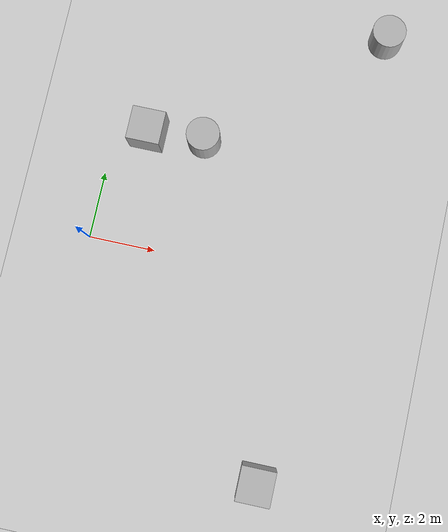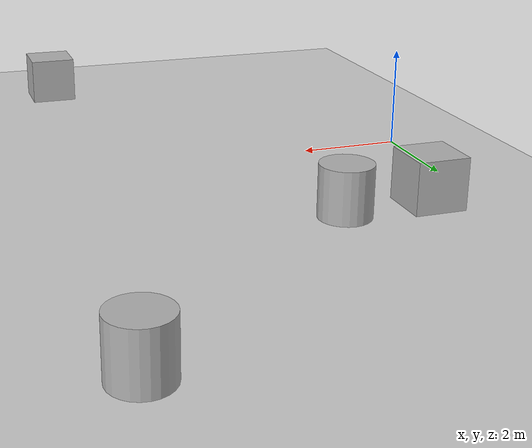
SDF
<sdf version='1.10'>
  <world name='empty'>
    <physics name='8ms' type='ode'>
      <max_step_size>0.0080000000000000002</max_step_size>
      <real_time_factor>1</real_time_factor>
      <real_time_update_rate>125</real_time_update_rate>
    </physics>
    <plugin name='gz::sim::systems::Physics' filename='gz-sim-physics-system'/>
    <plugin name='gz::sim::systems::UserCommands' filename='gz-sim-user-commands-system'/>
    <plugin name='gz::sim::systems::SceneBroadcaster' filename='gz-sim-scene-broadcaster-system'/>
    <plugin name='gz::sim::systems::Contact' filename='gz-sim-contact-system'/>
    <plugin name='gz::sim::systems::Sensors' filename='gz-sim-sensors-system'>
      <render_engine>ogre2</render_engine>
    </plugin>
    <plugin name='gz::sim::systems::Imu' filename='gz-sim-imu-system'/>
    <gravity>0 0 -9.8000000000000007</gravity>
    <magnetic_field>5.5644999999999998e-06 2.2875799999999999e-05 -4.2388400000000002e-05</magnetic_field>
    <atmosphere type='adiabatic'/>
    <scene>
      <ambient>0.400000006 0.400000006 0.400000006 1</ambient>
      <background>0.699999988 0.699999988 0.699999988 1</background>
      <shadows>true</shadows>
    </scene>
    <model name='ground_plane'>
      <static>true</static>
      <link name='link'>
        <collision name='collision'>
          <geometry>
            <plane>
              <normal>0 0 1</normal>
              <size>100 100</size>
            </plane>
          </geometry>
          <surface>
            <friction>
              <ode/>
            </friction>
            <bounce/>
            <contact/>
          </surface>
        </collision>
        <visual name='visual'>
          <geometry>
            <plane>
              <normal>0 0 1</normal>
              <size>100 100</size>
            </plane>
          </geometry>
          <material>
            <ambient>0.800000012 0.800000012 0.800000012 1</ambient>
            <diffuse>0.800000012 0.800000012 0.800000012 1</diffuse>
            <specular>0.800000012 0.800000012 0.800000012 1</specular>
          </material>
        </visual>
        <pose>0 0 0 0 0 0</pose>
        <inertial>
          <pose>0 0 0 0 0 0</pose>
          <mass>1</mass>
          <inertia>
            <ixx>1</ixx>
            <ixy>0</ixy>
            <ixz>0</ixz>
            <iyy>1</iyy>
            <iyz>0</iyz>
            <izz>1</izz>
          </inertia>
        </inertial>
        <enable_wind>false</enable_wind>
      </link>
      <pose>0 0 0 0 0 0</pose>
      <self_collide>false</self_collide>
    </model>
    <model name='box'>
      <pose>6.3773749437070606 -5.9406750922173917 0.49999998751846952 1.8800964017555261e-19 2.6212803696071318e-19 -1.3871449232102232e-20</pose>
      <link name='box_link'>
        <inertial>
          <inertia>
            <ixx>0.16666</ixx>
            <ixy>0</ixy>
            <ixz>0</ixz>
            <iyy>0.16666</iyy>
            <iyz>0</iyz>
            <izz>0.16666</izz>
          </inertia>
          <mass>1</mass>
          <pose>0 0 0 0 0 0</pose>
        </inertial>
        <collision name='box_collision'>
          <geometry>
            <box>
              <size>1 1 1</size>
            </box>
          </geometry>
          <surface>
            <friction>
              <ode/>
            </friction>
            <bounce/>
            <contact/>
          </surface>
        </collision>
        <visual name='box_visual'>
          <geometry>
            <box>
              <size>1 1 1</size>
            </box>
          </geometry>
          <material>
            <ambient>0.300000012 0.300000012 0.300000012 1</ambient>
            <diffuse>0.699999988 0.699999988 0.699999988 1</diffuse>
            <specular>1 1 1 1</specular>
          </material>
        </visual>
        <pose>0 0 0 0 0 0</pose>
        <enable_wind>false</enable_wind>
      </link>
      <static>false</static>
      <self_collide>false</self_collide>
    </model>
    <model name='cylinder'>
      <pose>7.5005252554138071 7.818760209903882 0.49999900280739229 4.69572638801564e-17 4.6117416266981391e-17 -2.8269350966870752e-19</pose>
      <link name='cylinder_link'>
        <inertial>
          <inertia>
            <ixx>0.14580000000000001</ixx>
            <ixy>0</ixy>
            <ixz>0</ixz>
            <iyy>0.14580000000000001</iyy>
            <iyz>0</iyz>
            <izz>0.125</izz>
          </inertia>
          <mass>1</mass>
          <pose>0 0 0 0 0 0</pose>
        </inertial>
        <collision name='cylinder_collision'>
          <geometry>
            <cylinder>
              <radius>0.5</radius>
              <length>1</length>
            </cylinder>
          </geometry>
          <surface>
            <friction>
              <ode/>
            </friction>
            <bounce/>
            <contact/>
          </surface>
        </collision>
        <visual name='cylinder_visual'>
          <geometry>
            <cylinder>
              <radius>0.5</radius>
              <length>1</length>
            </cylinder>
          </geometry>
          <material>
            <ambient>0.300000012 0.300000012 0.300000012 1</ambient>
            <diffuse>0.699999988 0.699999988 0.699999988 1</diffuse>
            <specular>1 1 1 1</specular>
          </material>
        </visual>
        <pose>0 0 0 0 0 0</pose>
        <enable_wind>false</enable_wind>
      </link>
      <static>false</static>
      <self_collide>false</self_collide>
    </model>
    <model name='box_0'>
      <pose>1.0430474018532028 3.4817915682843621 0.49999999372787457 3.9864153056827992e-20 5.9698986531016748e-20 -2.3241941548364888e-20</pose>
      <link name='box_link'>
        <inertial>
          <inertia>
            <ixx>0.16666</ixx>
            <ixy>0</ixy>
            <ixz>0</ixz>
            <iyy>0.16666</iyy>
            <iyz>0</iyz>
            <izz>0.16666</izz>
          </inertia>
          <mass>1</mass>
          <pose>0 0 0 0 0 0</pose>
        </inertial>
        <collision name='box_collision'>
          <geometry>
            <box>
              <size>1 1 1</size>
            </box>
          </geometry>
          <surface>
            <friction>
              <ode/>
            </friction>
            <bounce/>
            <contact/>
          </surface>
        </collision>
        <visual name='box_visual'>
          <geometry>
            <box>
              <size>1 1 1</size>
            </box>
          </geometry>
          <material>
            <ambient>0.300000012 0.300000012 0.300000012 1</ambient>
            <diffuse>0.699999988 0.699999988 0.699999988 1</diffuse>
            <specular>1 1 1 1</specular>
          </material>
        </visual>
        <pose>0 0 0 0 0 0</pose>
        <enable_wind>false</enable_wind>
      </link>
      <static>false</static>
      <self_collide>false</self_collide>
    </model>
    <model name='cylinder_0'>
      <pose>2.7417203900830494 3.576889176520949 0.49999899511755064 1.604800731092537e-17 2.7630384911013677e-17 -2.6543793603526473e-18</pose>
      <link name='cylinder_link'>
        <inertial>
          <inertia>
            <ixx>0.14580000000000001</ixx>
            <ixy>0</ixy>
            <ixz>0</ixz>
            <iyy>0.14580000000000001</iyy>
            <iyz>0</iyz>
            <izz>0.125</izz>
          </inertia>
          <mass>1</mass>
          <pose>0 0 0 0 0 0</pose>
        </inertial>
        <collision name='cylinder_collision'>
          <geometry>
            <cylinder>
              <radius>0.5</radius>
              <length>1</length>
            </cylinder>
          </geometry>
          <surface>
            <friction>
              <ode/>
            </friction>
            <bounce/>
            <contact/>
          </surface>
        </collision>
        <visual name='cylinder_visual'>
          <geometry>
            <cylinder>
              <radius>0.5</radius>
              <length>1</length>
            </cylinder>
          </geometry>
          <material>
            <ambient>0.300000012 0.300000012 0.300000012 1</ambient>
            <diffuse>0.699999988 0.699999988 0.699999988 1</diffuse>
            <specular>1 1 1 1</specular>
          </material>
        </visual>
        <pose>0 0 0 0 0 0</pose>
        <enable_wind>false</enable_wind>
      </link>
      <static>false</static>
      <self_collide>false</self_collide>
    </model>
    <light name='sun' type='directional'>
      <pose>0 0 10 0 0 0</pose>
      <cast_shadows>true</cast_shadows>
      <intensity>1</intensity>
      <direction>-0.5 0.10000000000000001 -0.90000000000000002</direction>
      <diffuse>0.800000012 0.800000012 0.800000012 1</diffuse>
      <specular>0.200000003 0.200000003 0.200000003 1</specular>
      <attenuation>
        <range>1000</range>
        <linear>0.01</linear>
        <constant>0.90000000000000002</constant>
        <quadratic>0.001</quadratic>
      </attenuation>
      <spot>
        <inner_angle>0</inner_angle>
        <outer_angle>0</outer_angle>
        <falloff>0</falloff>
      </spot>
    </light>
  </world>
</sdf>
